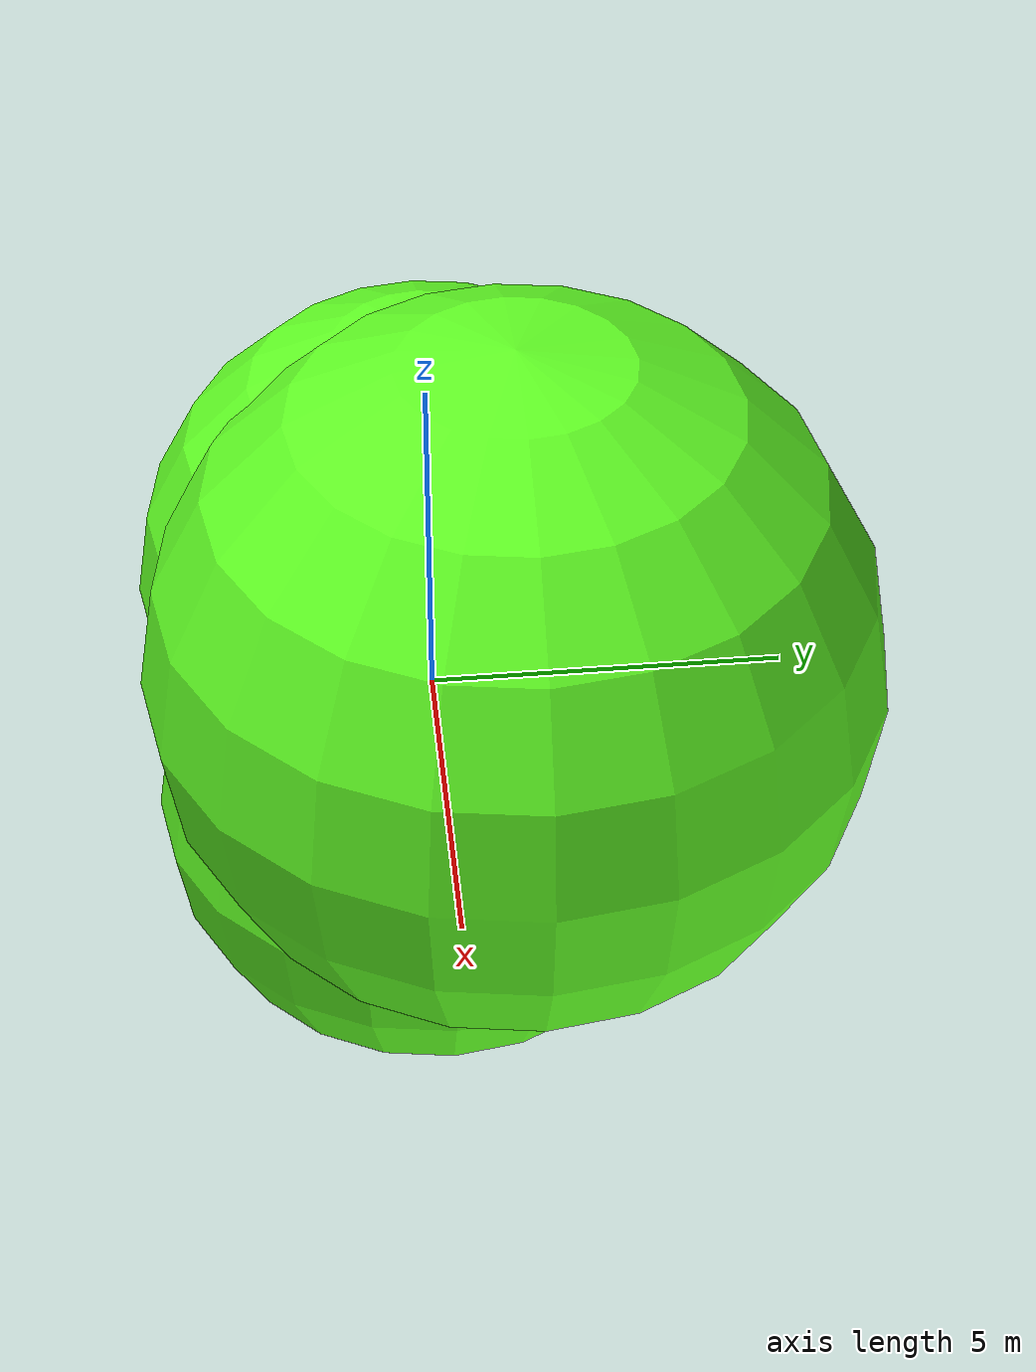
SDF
<?xml version="1.0" ?>
<sdf version="1.6">
  <model name="leaves">
    <static>true</static>
    <link name="link_base">
    <pose>0 0 0 0 0 0</pose>
        <collision name="col">
            <geometry><sphere><radius>4</radius></sphere></geometry>
        </collision>
        <visual name="vis">
            <geometry><sphere><radius>4</radius></sphere></geometry>
          <material>
            <ambient>0.28 0.94 0.04 1</ambient>
            <diffuse>0.38 1 0.14 1</diffuse>
            <pbr>
              <metal>
                <albedo_map>textures/bright_green_leaves_small.jpg</albedo_map>
                <roughness>0.9</roughness>
                <metalness>0.0</metalness>
              </metal>
            </pbr>
          </material>
        </visual>
    </link>

    <link name="link_bunch_1">
    <pose>0 0 2 0 0 0</pose>
        <collision name="col">
            <geometry><sphere><radius>4</radius></sphere></geometry>
        </collision>
        <visual name="vis">
            <geometry><sphere><radius>4</radius></sphere></geometry>
          <material>
            <ambient>0.28 0.94 0.04 1</ambient>
            <diffuse>0.38 1 0.14 1</diffuse>
            <pbr>
              <metal>
                <albedo_map>textures/bright_green_leaves_small.jpg</albedo_map>
                <roughness>0.9</roughness>
                <metalness>0.0</metalness>
              </metal>
            </pbr>
          </material>
        </visual>
    </link>

    <link name="link_bunch_2">
    <pose>0 1 0 0 0 0</pose>
        <collision name="col">
            <geometry><sphere><radius>2</radius></sphere></geometry>
        </collision>
        <visual name="vis">
            <geometry><sphere><radius>2</radius></sphere></geometry>
          <material>
            <ambient>0.28 0.94 0.04 1</ambient>
            <diffuse>0.38 1 0.14 1</diffuse>
            <pbr>
              <metal>
                <albedo_map>textures/bright_green_leaves_small.jpg</albedo_map>
                <roughness>0.9</roughness>
                <metalness>0.0</metalness>
              </metal>
            </pbr>
          </material>
        </visual>
    </link>

    <link name="link_bunch_3">
    <pose>0 0 -2 0 0 0</pose>
        <collision name="col">
            <geometry><sphere><radius>4</radius></sphere></geometry>
        </collision>
        <visual name="vis">
            <geometry><sphere><radius>4</radius></sphere></geometry>
          <material>
            <ambient>0.28 0.94 0.04 1</ambient>
            <diffuse>0.38 1 0.14 1</diffuse>
            <pbr>
              <metal>
                <albedo_map>textures/bright_green_leaves_small.jpg</albedo_map>
                <roughness>0.9</roughness>
                <metalness>0.0</metalness>
              </metal>
            </pbr>
          </material>
        </visual>
    </link>

    <link name="link_bunch_5">
    <pose>2 1 2 0 0 0</pose>
        <collision name="col">
            <geometry><sphere><radius>5</radius></sphere></geometry>
        </collision>
        <visual name="vis">
            <geometry><sphere><radius>5</radius></sphere></geometry>
          <material>
            <ambient>0.28 0.94 0.04 1</ambient>
            <diffuse>0.38 1 0.14 1</diffuse>
            <pbr>
              <metal>
                <albedo_map>textures/bright_green_leaves_small.jpg</albedo_map>
                <roughness>0.9</roughness>
                <metalness>0.0</metalness>
              </metal>
            </pbr>
          </material>
        </visual>
    </link>
  </model>
</sdf>
